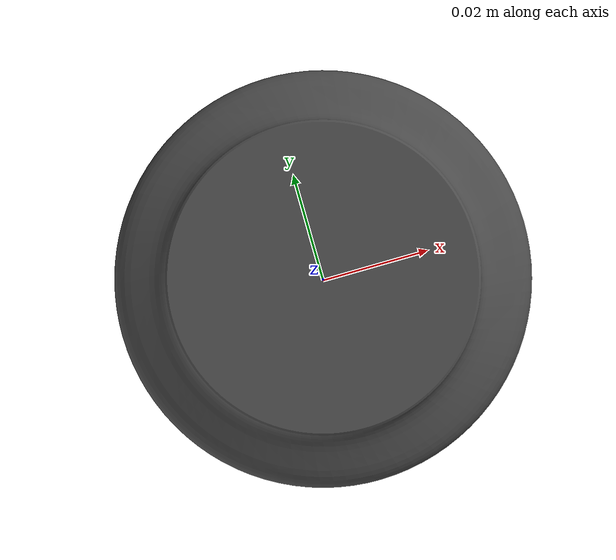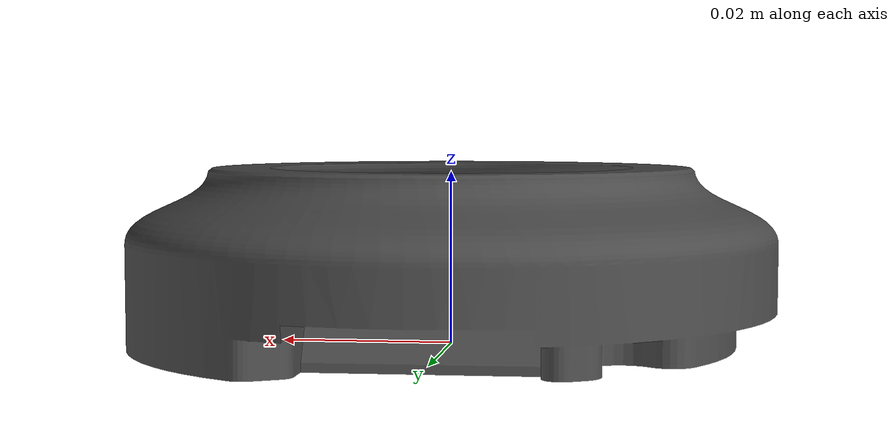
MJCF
<mujoco model="seedRobotics_adaptor">
  <default>
    <default class="visual">
      <geom group="2" type="mesh" contype="0" conaffinity="0"/>
    </default>
    <default class="collision">
      <geom group="3" type="mesh"/>
    </default>
  </default>
  <asset>
    <material name="mtl_seedRobotics_adaptor" specular="0.20000000000000004" shininess="1.0" rgba="0.29803922 0.29803922 0.29803922 1.0"/>
    <mesh file="seedRobotics_adaptor.obj"/>
  </asset>
  <worldbody>
    <body name="seedRobotics_adaptor">
      <geom material="mtl_seedRobotics_adaptor" mesh="seedRobotics_adaptor" class="visual"/>
      <geom mesh="seedRobotics_adaptor" class="collision"/>
    </body>
  </worldbody>
</mujoco>
